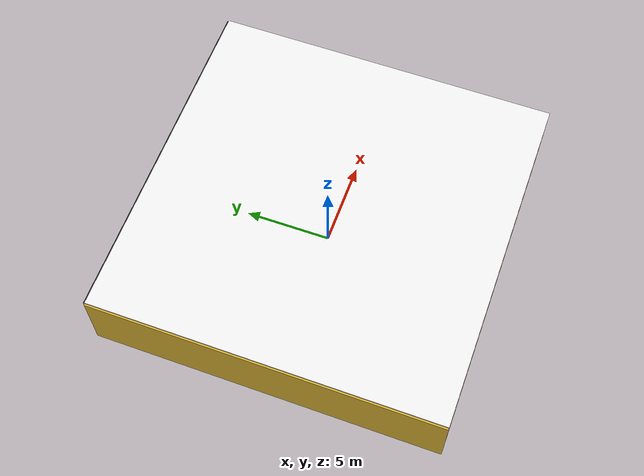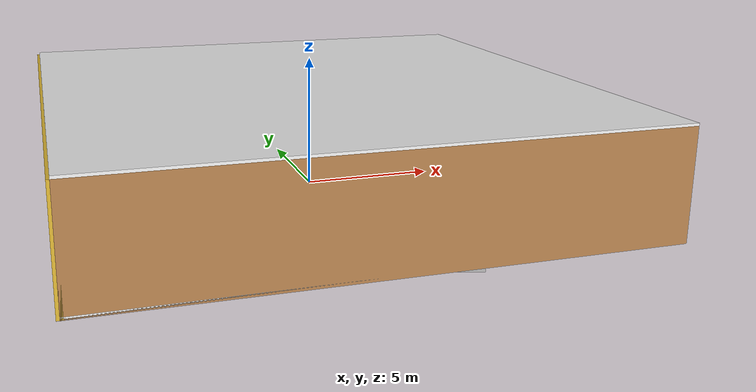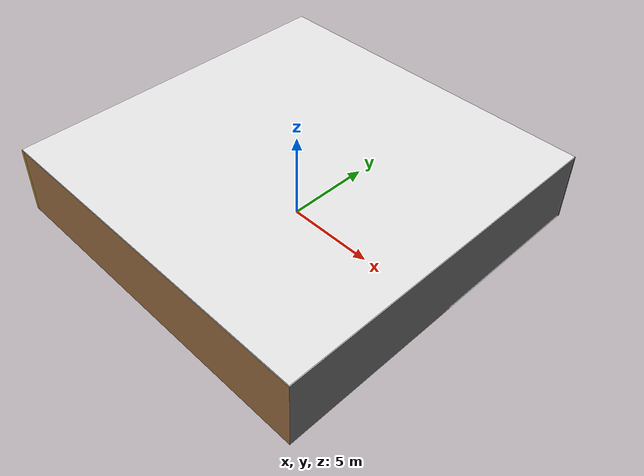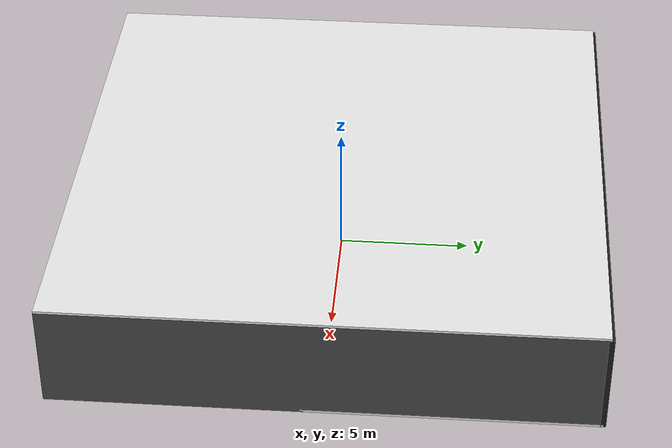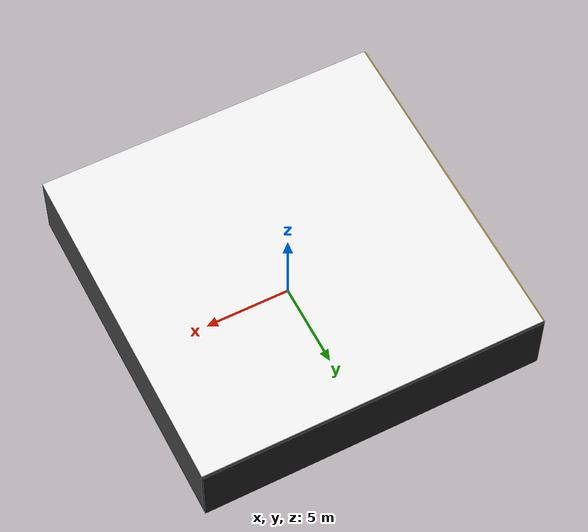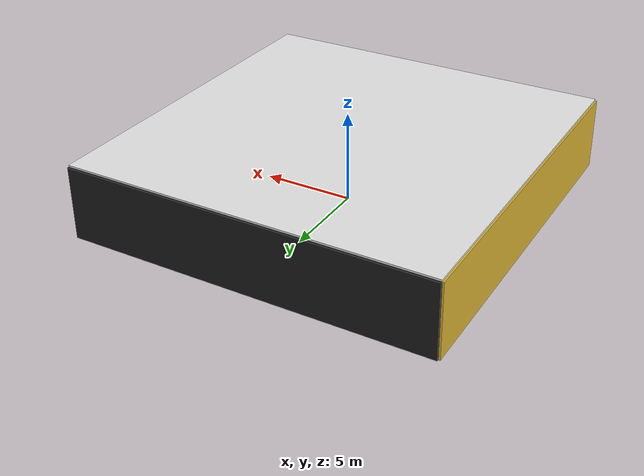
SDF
<sdf version="1.4">
 <world name="default">
  <physics type="ode">
   <max_step_size>0.001</max_step_size>
   <real_time_factor>1</real_time_factor>
   <real_time_update_rate>1000</real_time_update_rate>
   <gravity>0 0 -9.8</gravity>
  </physics>
  <scene><ambient>0.4 0.4 0.4 1</ambient><background>0.7 0.7 0.7 1</background><shadows>1</shadows></scene>
  <model name="Surrounding">
   <static>1</static>
   <link name="Ceiling">
    <collision name="Ceiling_Collision"><geometry><box><size>20 20 0.1</size></box></geometry></collision>
    <visual name="Ceiling_Visual">
     <geometry><box><size>20 20 0.1</size></box></geometry>
     <material>
      <script><uri>file://media/materials/scripts/gazebo.material</uri><name>Gazebo/White</name></script>
     </material>
    </visual>
    <pose>0 0 4.05 0 0 0</pose>
   </link>
   <link name="Wall_South">
    <collision name="Wall_South_Collision">
     <geometry><box><size>20 0 4</size></box></geometry>
     <pose>0 0 2 0 -0 0</pose>
    </collision>
    <visual name="Wall_South_Visual">
     <pose>0 0 2 0 -0 0</pose>
     <geometry><box><size>20 0 4</size></box></geometry>
     <material>
      <script><uri>file://media/materials/scripts/gazebo.material</uri><name>Gazebo/Wood</name></script>
     </material>
    </visual>
    <velocity_decay><linear>0</linear><angular>0</angular></velocity_decay>
    <pose>0 -10 0 0 -0 0</pose>
   </link>
   <link name="Wall_East">
    <collision name="Wall_21_Collision">
     <geometry><box><size>20 0 4</size></box></geometry>
     <pose>0 0 2 0 -0 0</pose>
    </collision>
    <visual name="Wall_21_Visual">
     <pose>0 0 2 0 -0 0</pose>
     <geometry><box><size>20 0 4</size></box></geometry>
     <material>
      <script><uri>file://media/materials/scripts/gazebo.material</uri><name>Gazebo/DarkGrey</name></script>
     </material>
    </visual>
    <velocity_decay><linear>0</linear><angular>0</angular></velocity_decay>
    <pose>10 0 0 0 -0 1.5708</pose>
   </link>
   <link name="Wall_North">
    <collision name="Wall_22_Collision">
     <geometry><box><size>20 0.2 4</size></box></geometry>
     <pose>0 0 2 0 -0 0</pose>
    </collision>
    <visual name="Wall_22_Visual">
     <pose>0 0 2 0 -0 0</pose>
     <geometry><box><size>20 0.2 4</size></box></geometry>
     <material>
      <script><uri>file://media/materials/scripts/gazebo.material</uri><name>Gazebo/Black</name></script>
     </material>
    </visual>
    <velocity_decay><linear>0</linear><angular>0</angular></velocity_decay>
    <pose>0 10 0 0 -0 0</pose>
   </link>
   <link name="Wall_West">
    <collision name="Wall_23_Collision">
     <geometry><box><size>20 0.2 4</size></box></geometry>
     <pose>0 0 2 0 -0 0</pose>
    </collision>
    <visual name="Wall_23_Visual">
     <pose>0 0 2 0 -0 0</pose>
     <geometry><box><size>20 0.2 4</size></box></geometry>
     <material>
      <script><uri>file://media/materials/scripts/gazebo.material</uri><name>Gazebo/Gold</name></script>
     </material>
    </visual>
    <velocity_decay><linear>0</linear><angular>0</angular></velocity_decay>
    <pose>-10 0 0 0 0 -1.5708</pose>
   </link>
   <link name="Ground_link">
    <collision name="collision">
     <pose>0 0 .05 0 -0 0</pose>
     <geometry><box><size>20 20 0.1</size></box></geometry>
    </collision>
    <visual name="visual">
     <pose>0 0 .05 0 -0 0</pose>
     <geometry><box><size>20 20 0.1</size></box></geometry>
     <material>
      <script><uri>file://media/materials/scripts/gazebo.material</uri><name>Gazebo/White</name></script>
     </material>
    </visual>
   </link>
   <static>1</static>
  </model>
  <spherical_coordinates>
   <surface_model>EARTH_WGS84</surface_model>
   <latitude_deg>0</latitude_deg>
   <longitude_deg>0</longitude_deg>
   <elevation>0</elevation>
   <heading_deg>0</heading_deg>
  </spherical_coordinates>
  <light name="lightball_0" type="diffuse">
   <diffuse>0.8 0.8 0.8 1</diffuse>
   <specular>0.2 0.2 0.2 1</specular>
   <attenuation>
    <range>100</range>
    <constant>0.7</constant>
    <linear>0.01</linear>
    <quadratic>0.001</quadratic>
   </attenuation>
   <direction>-0.5 0.1 -0.9</direction>
   <pose>9.47638548757 6.3973029125 2.58966682108 0 0 0</pose>
  </light>
  <light name="lightball_1" type="diffuse">
   <diffuse>0.8 0.8 0.8 1</diffuse>
   <specular>0.2 0.2 0.2 1</specular>
   <attenuation>
    <range>100</range>
    <constant>0.7</constant>
    <linear>0.01</linear>
    <quadratic>0.001</quadratic>
   </attenuation>
   <direction>-0.5 0.1 -0.9</direction>
   <pose>-2.51954100686 9.084446253 2.89596404669 0 0 0</pose>
  </light>
  <light name="lightball_2" type="diffuse">
   <diffuse>0.8 0.8 0.8 1</diffuse>
   <specular>0.2 0.2 0.2 1</specular>
   <attenuation>
    <range>100</range>
    <constant>0.7</constant>
    <linear>0.01</linear>
    <quadratic>0.001</quadratic>
   </attenuation>
   <direction>-0.5 0.1 -0.9</direction>
   <pose>9.05005773938 0.296001128972 2.3832799565 0 0 0</pose>
  </light>
  <light name="lightball_3" type="diffuse">
   <diffuse>0.8 0.8 0.8 1</diffuse>
   <specular>0.2 0.2 0.2 1</specular>
   <attenuation>
    <range>100</range>
    <constant>0.7</constant>
    <linear>0.01</linear>
    <quadratic>0.001</quadratic>
   </attenuation>
   <direction>-0.5 0.1 -0.9</direction>
   <pose>-4.48577978589 8.5050698372 2.31572894941 0 0 0</pose>
  </light>
  <light name="lightball_4" type="diffuse">
   <diffuse>0.8 0.8 0.8 1</diffuse>
   <specular>0.2 0.2 0.2 1</specular>
   <attenuation>
    <range>100</range>
    <constant>0.7</constant>
    <linear>0.01</linear>
    <quadratic>0.001</quadratic>
   </attenuation>
   <direction>-0.5 0.1 -0.9</direction>
   <pose>-6.67660651601 3.36914207385 3.77244606576 0 0 0</pose>
  </light>
  <light name="lightball_5" type="diffuse">
   <diffuse>0.8 0.8 0.8 1</diffuse>
   <specular>0.2 0.2 0.2 1</specular>
   <attenuation>
    <range>100</range>
    <constant>0.7</constant>
    <linear>0.01</linear>
    <quadratic>0.001</quadratic>
   </attenuation>
   <direction>-0.5 0.1 -0.9</direction>
   <pose>-2.2146756045 8.20472367337 0.688491357411 0 0 0</pose>
  </light>
  <light name="lightball_6" type="diffuse">
   <diffuse>0.8 0.8 0.8 1</diffuse>
   <specular>0.2 0.2 0.2 1</specular>
   <attenuation>
    <range>100</range>
    <constant>0.7</constant>
    <linear>0.01</linear>
    <quadratic>0.001</quadratic>
   </attenuation>
   <direction>-0.5 0.1 -0.9</direction>
   <pose>-3.04632352867 -5.25449661514 2.06771015909 0 0 0</pose>
  </light>
  <light name="lightball_7" type="diffuse">
   <diffuse>0.8 0.8 0.8 1</diffuse>
   <specular>0.2 0.2 0.2 1</specular>
   <attenuation>
    <range>100</range>
    <constant>0.7</constant>
    <linear>0.01</linear>
    <quadratic>0.001</quadratic>
   </attenuation>
   <direction>-0.5 0.1 -0.9</direction>
   <pose>3.50710934602 -5.42489077155 2.39023063739 0 0 0</pose>
  </light>
  <light name="lightball_8" type="diffuse">
   <diffuse>0.8 0.8 0.8 1</diffuse>
   <specular>0.2 0.2 0.2 1</specular>
   <attenuation>
    <range>100</range>
    <constant>0.7</constant>
    <linear>0.01</linear>
    <quadratic>0.001</quadratic>
   </attenuation>
   <direction>-0.5 0.1 -0.9</direction>
   <pose>0.742640051966 -2.16365272281 3.17579071463 0 0 0</pose>
  </light>
  <light name="lightball_9" type="diffuse">
   <diffuse>0.8 0.8 0.8 1</diffuse>
   <specular>0.2 0.2 0.2 1</specular>
   <attenuation>
    <range>100</range>
    <constant>0.7</constant>
    <linear>0.01</linear>
    <quadratic>0.001</quadratic>
   </attenuation>
   <direction>-0.5 0.1 -0.9</direction>
   <pose>-2.84466648736 3.82491070292 1.94319354147 0 0 0</pose>
  </light>
  <light name="lightball_10" type="diffuse">
   <diffuse>0.8 0.8 0.8 1</diffuse>
   <specular>0.2 0.2 0.2 1</specular>
   <attenuation>
    <range>100</range>
    <constant>0.7</constant>
    <linear>0.01</linear>
    <quadratic>0.001</quadratic>
   </attenuation>
   <direction>-0.5 0.1 -0.9</direction>
   <pose>-7.84371533065 7.43094199367 2.86089705237 0 0 0</pose>
  </light>
  <light name="lightball_11" type="diffuse">
   <diffuse>0.8 0.8 0.8 1</diffuse>
   <specular>0.2 0.2 0.2 1</specular>
   <attenuation>
    <range>100</range>
    <constant>0.7</constant>
    <linear>0.01</linear>
    <quadratic>0.001</quadratic>
   </attenuation>
   <direction>-0.5 0.1 -0.9</direction>
   <pose>-8.09706823682 -5.12302302394 3.38479703118 0 0 0</pose>
  </light>
  <include><uri>model://cabinet</uri><pose>-6.93394320391 -1.37074364631 0 0 0 3.07862228037</pose></include>
  <include>
   <uri>model://robocup_3Dsim_goal</uri>
   <pose>-2.01905232703 1.79143229318 0 0 0 2.42494902074</pose>
  </include>
  <include>
   <uri>model://textured_shapes</uri>
   <pose>-1.30825426782 8.1369633891 0 0 0 1.47979863422</pose>
  </include>
  <include>
   <uri>model://textured_shapes</uri>
   <pose>1.35858072587 -8.12911426077 0 0 0 1.2618161052</pose>
  </include>
  <include><uri>model://table</uri><pose>2.04653790327 1.58944737676 0 0 0 2.35076481393</pose></include>
  <include><uri>model://table</uri><pose>5.23067689853 4.46929971468 0 0 0 0.344996368622</pose></include>
 </world>
</sdf>

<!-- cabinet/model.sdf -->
<sdf version="1.5">
  <model name="cabinet">
    <static>true</static>
    <link name="cabinet_bottom_plate">
      <inertial>
        <pose>0 0 -1 0 0 0</pose>
        <inertia>
          <ixx>2.050000</ixx>
          <ixy>0</ixy>
          <ixz>0</ixz>
          <iyy>2.050000</iyy>
          <iyz>0</iyz>
          <izz>2.050000</izz>
        </inertia>
        <mass>25.000000</mass>
      </inertial>
      <collision name="cabinet_bottom_plate_geom">
        <pose>0 0 0.010000 0 0 0</pose>
        <geometry>
          <box>
            <size>0.450000 0.450000 0.020000</size>
          </box>
        </geometry>
      </collision>
      <visual name="cabinet_bottom_plate_geom_visual">
        <pose>0 0 0.010000 0 0 0</pose>
        <geometry>
          <box>
            <size>0.450000 0.450000 0.020000</size>
          </box>
        </geometry>
        <material>
          <script>
            <uri>model://media/materials/scripts/gazebo.material</uri>
            <name>Gazebo/Wood</name>
          </script>
        </material>
      </visual>
      <collision name="cabinet_bottom_plate_geom_cabinet_back_plate">
        <pose>0.235000 0 0.510000 0 0 0</pose>
        <geometry>
          <box>
            <size>0.020000 0.450000 1.020000</size>
          </box>
        </geometry>
      </collision>
      <visual name="cabinet_bottom_plate_geom_cabinet_back_plate_visual">
        <pose>0.235000 0 0.510000 0 0 0</pose>
        <geometry>
          <box>
            <size>0.020000 0.450000 1.020000</size>
          </box>
        </geometry>
        <material>
          <script>
            <uri>model://media/materials/scripts/gazebo.material</uri>
            <name>Gazebo/Wood</name>
          </script>
        </material>
      </visual>
      <collision name="cabinet_bottom_plate_geom_cabinet_left_plate">
        <pose>0 0.235000 0.510000 0 0 0</pose>
        <geometry>
          <box>
            <size>0.450000 0.020000 1.020000</size>
          </box>
        </geometry>
      </collision>
      <visual name="cabinet_bottom_plate_geom_cabinet_left_plate_visual">
        <pose>0 0.235000 0.510000 0 0 0</pose>
        <geometry>
          <box>
            <size>0.450000 0.020000 1.020000</size>
          </box>
        </geometry>
        <material>
          <script>
            <uri>model://media/materials/scripts/gazebo.material</uri>
            <name>Gazebo/Wood</name>
          </script>
        </material>
      </visual>
      <collision name="cabinet_bottom_plate_geom_cabinet_middle_plate">
        <pose>0 0 0.510000 0 0 0</pose>
        <geometry>
          <box>
            <size>0.450000 0.450000 0.020000</size>
          </box>
        </geometry>
      </collision>
      <visual name="cabinet_bottom_plate_geom_cabinet_middle_plate_visual">
        <pose>0 0 0.510000 0 0 0</pose>
        <geometry>
          <box>
            <size>0.450000 0.450000 0.020000</size>
          </box>
        </geometry>
        <material>
          <script>
            <uri>model://media/materials/scripts/gazebo.material</uri>
            <name>Gazebo/Wood</name>
          </script>
        </material>
      </visual>
      <collision name="cabinet_bottom_plate_geom_cabinet_right_plate">
        <pose>0 -0.235000 0.510000 0 0 0</pose>
        <geometry>
          <box>
            <size>0.450000 0.020000 1.020000</size>
          </box>
        </geometry>
      </collision>
      <visual name="cabinet_bottom_plate_geom_cabinet_right_plate_visual">
        <pose>0 -0.235000 0.510000 0 0 0</pose>
        <geometry>
          <box>
            <size>0.450000 0.020000 1.020000</size>
          </box>
        </geometry>
        <material>
          <script>
            <uri>model://media/materials/scripts/gazebo.material</uri>
            <name>Gazebo/Wood</name>
          </script>
        </material>
      </visual>
      <collision name="cabinet_bottom_plate_geom_cabinet_top_plate">
        <pose>0 0 1.010000 0 0 0</pose>
        <geometry>
          <box>
            <size>0.450000 0.450000 0.020000</size>
          </box>
        </geometry>
      </collision>
      <visual name="cabinet_bottom_plate_geom_cabinet_top_plate_visual">
        <pose>0 0 1.010000 0 0 0</pose>
        <geometry>
          <box>
            <size>0.450000 0.450000 0.020000</size>
          </box>
        </geometry>
        <material>
          <script>
            <uri>model://media/materials/scripts/gazebo.material</uri>
            <name>Gazebo/Wood</name>
          </script>
        </material>
      </visual>
    </link>
  </model>
</sdf>

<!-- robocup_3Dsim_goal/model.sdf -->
<sdf version="1.5">
  <model name="robocup_3d_goal">
    <static>true</static>
    <link name="left_post">
      <pose>0 1.05 0.45 0 0 0</pose>
      <collision name="collision">
        <geometry>
          <cylinder>
            <radius>0.05</radius>
            <length>0.9</length>
          </cylinder>
        </geometry>
      </collision>
      <visual name="visual">
        <geometry>
          <cylinder>
            <radius>0.05</radius>
            <length>0.9</length>
          </cylinder>
        </geometry>
        <material>
          <script>
            <uri>file://media/materials/scripts/gazebo.material</uri>
            <name>Gazebo/ZincYellow</name>
          </script>
        </material>
      </visual>
    </link>
    <link name="left_support_horiz_lower">
      <pose>0.30 1.05 0.01 0 0 0</pose>
      <collision name="collision">
        <geometry>
          <box>
            <size>0.50 0.02 0.02</size>
          </box>
        </geometry>
      </collision>
      <visual name="visual">
        <geometry>
          <box>
            <size>0.50 0.02 0.02</size>
          </box>
        </geometry>
        <material>
          <script>
            <uri>file://media/materials/scripts/gazebo.material</uri>
            <name>Gazebo/White</name>
          </script>
        </material>
      </visual>
    </link>
    <link name="left_support_horiz_upper">
      <pose>0.30 1.05 0.79 0 0 0</pose>
      <collision name="collision">
        <geometry>
          <box>
            <size>0.50 0.02 0.02</size>
          </box>
        </geometry>
      </collision>
      <visual name="visual">
        <geometry>
          <box>
            <size>0.50 0.02 0.02</size>
          </box>
        </geometry>
        <material>
          <script>
            <uri>file://media/materials/scripts/gazebo.material</uri>
            <name>Gazebo/White</name>
          </script>
        </material>
      </visual>
    </link>
    <link name="left_support_vertical">
      <pose>0.56 1.05 0.4 0 1.5708 0</pose>
      <collision name="collision">
        <geometry>
          <box>
            <size>0.80 0.02 0.02</size>
          </box>
        </geometry>
      </collision>
      <visual name="visual">
        <geometry>
          <box>
            <size>0.80 0.02 0.02</size>
          </box>
        </geometry>
        <material>
          <script>
            <uri>file://media/materials/scripts/gazebo.material</uri>
            <name>Gazebo/White</name>
          </script>
        </material>
      </visual>
    </link>
    <link name="right_support_horiz_lower">
      <pose>0.30 -1.05 0.01 0 0 0</pose>
      <collision name="collision">
        <geometry>
          <box>
            <size>0.50 0.02 0.02</size>
          </box>
        </geometry>
      </collision>
      <visual name="visual">
        <geometry>
          <box>
            <size>0.50 0.02 0.02</size>
          </box>
        </geometry>
        <material>
          <script>
            <uri>file://media/materials/scripts/gazebo.material</uri>
            <name>Gazebo/White</name>
          </script>
        </material>
      </visual>
    </link>
    <link name="right_support_horiz_upper">
      <pose>0.30 -1.05 0.79 0 0 0</pose>
      <collision name="collision">
        <geometry>
          <box>
            <size>0.50 0.02 0.02</size>
          </box>
        </geometry>
      </collision>
      <visual name="visual">
        <geometry>
          <box>
            <size>0.50 0.02 0.02</size>
          </box>
        </geometry>
        <material>
          <script>
            <uri>file://media/materials/scripts/gazebo.material</uri>
            <name>Gazebo/White</name>
          </script>
        </material>
      </visual>
    </link>
    <link name="right_support_vertical">
      <pose>0.56 -1.05 0.4 0 1.5708 0</pose>
      <collision name="collision">
        <geometry>
          <box>
            <size>0.80 0.02 0.02</size>
          </box>
        </geometry>
      </collision>
      <visual name="visual">
        <geometry>
          <box>
            <size>0.80 0.02 0.02</size>
          </box>
        </geometry>
        <material>
          <script>
            <uri>file://media/materials/scripts/gazebo.material</uri>
            <name>Gazebo/White</name>
          </script>
        </material>
      </visual>
    </link>
    <link name="center_support_horiz_lower">
      <pose>0.56 0 0.01 0 1.5708 0</pose>
      <collision name="collision">
        <geometry>
          <box>
            <size>0.02 2.08 0.02</size>
          </box>
        </geometry>
      </collision>
      <visual name="visual">
        <geometry>
          <box>
            <size>0.02 2.08 0.02</size>
          </box>
        </geometry>
        <material>
          <script>
            <uri>file://media/materials/scripts/gazebo.material</uri>
            <name>Gazebo/White</name>
          </script>
        </material>
      </visual>
    </link>
    <link name="center_support_horiz_upper">
      <pose>0.56 0 0.79 0 1.5708 0</pose>
      <collision name="collision">
        <geometry>
          <box>
            <size>0.02 2.08 0.02</size>
          </box>
        </geometry>
      </collision>
      <visual name="visual">
        <geometry>
          <box>
            <size>0.02 2.08 0.02</size>
          </box>
        </geometry>
        <material>
          <script>
            <uri>file://media/materials/scripts/gazebo.material</uri>
            <name>Gazebo/White</name>
          </script>
        </material>
      </visual>
    </link>
    <link name="right_post">
      <pose>0 -1.05 0.45 0 0 0</pose>
      <collision name="collision">
        <geometry>
          <cylinder>
            <radius>0.05</radius>
            <length>0.9</length>
          </cylinder>
        </geometry>
      </collision>
      <visual name="visual">
        <geometry>
          <cylinder>
            <radius>0.05</radius>
            <length>0.9</length>
          </cylinder>
        </geometry>
        <material>
          <script>
            <uri>file://media/materials/scripts/gazebo.material</uri>
            <name>Gazebo/ZincYellow</name>
          </script>
        </material>
      </visual>
    </link>
    <link name="crossbar">
      <pose>0 0 0.85 1.57 1.57 0</pose>
      <collision name="collision">
        <geometry>
          <cylinder>
            <radius>0.05</radius>
            <length>2.0</length>
          </cylinder>
        </geometry>
      </collision>
      <visual name="visual">
        <geometry>
          <cylinder>
            <radius>0.05</radius>
            <length>2.0</length>
          </cylinder>
        </geometry>
        <material>
          <script>
            <uri>file://media/materials/scripts/gazebo.material</uri>
            <name>Gazebo/ZincYellow</name>
          </script>
        </material>
      </visual>
    </link>
    <link name="center_net">
      <pose>0.56 0 0.40 0 0 0</pose>
      <collision name="collision">
        <geometry>
          <box>
            <size>0.01 2.1 0.80</size>
          </box>
        </geometry>
      </collision>
      <visual name="visual">
        <geometry>
          <box>
            <size>0.01 2.1 0.80</size>
          </box>
        </geometry>
        <material>
          <script>
            <uri>model://../model_source/models/robocup09_spl_field/materials/scripts/</uri>
            <uri>model://../model_source/models/robocup09_spl_field/materials/textures/</uri>
            <name>RoboCup/Net</name>
          </script>
        </material>
      </visual>
    </link>
    <link name="left_net">
      <pose>0.30 1.05 0.40 0 0 0</pose>
      <collision name="collision">
        <geometry>
          <box>
            <size>0.50 0.01 0.76</size>
          </box>
        </geometry>
      </collision>
      <visual name="visual">
        <geometry>
          <box>
            <size>0.50 0.01 0.76</size>
          </box>
        </geometry>
        <material>
          <script>
            <uri>model://../model_source/models/robocup09_spl_field/materials/scripts/</uri>
            <uri>model://../model_source/models/robocup09_spl_field/materials/textures/</uri>
            <name>RoboCup/Net</name>
          </script>
        </material>
      </visual>
    </link>
    <link name="right_net">
      <pose>0.30 -1.05 0.40 0 0 0</pose>
      <collision name="collision">
        <geometry>
          <box>
            <size>0.50 0.01 0.76</size>
          </box>
        </geometry>
      </collision>
      <visual name="visual">
        <geometry>
          <box>
            <size>0.50 0.01 0.76</size>
          </box>
        </geometry>
        <material>
          <script>
            <uri>model://../model_source/models/robocup09_spl_field/materials/scripts/</uri>
            <uri>model://../model_source/models/robocup09_spl_field/materials/textures/</uri>
            <name>RoboCup/Net</name>
          </script>
        </material>
      </visual>
    </link>
  </model>
</sdf>

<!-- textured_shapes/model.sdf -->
<sdf version="1.6">
  <model name="textured_shapes">
    <pose>0 0 0.5 0 0 0</pose>
    <link name="box">
      <pose>0 -1.5 0 0 0 0</pose>
      <collision name="collision">
        <geometry>
          <box>
            <size>1 1 1</size>
          </box>
        </geometry>
      </collision>
      <visual name="visual">
        <geometry>
          <box>
            <size>1 1 1</size>
          </box>
        </geometry>
        <material>
          <script>
            <uri>model://../model_source/models/textured_shapes/materials/scripts</uri>
            <uri>model://../model_source/models/textured_shapes/materials/textures</uri>
            <name>TexturedShape/Squares</name>
          </script>
        </material>
      </visual>
    </link>
    <link name="sphere">
      <collision name="collision">
        <geometry>
          <sphere>
            <radius>0.5</radius>
          </sphere>
        </geometry>
      </collision>
      <visual name="visual">
        <geometry>
          <sphere>
            <radius>0.5</radius>
          </sphere>
        </geometry>
        <material>
          <script>
            <uri>model://../model_source/models/textured_shapes/materials/scripts</uri>
            <uri>model://../model_source/models/textured_shapes/materials/textures</uri>
            <name>TexturedShape/Squares</name>
          </script>
        </material>
      </visual>
    </link>
    <link name="cylinder">
      <pose>0 1.5 0 0 0 0</pose>
      <collision name="collision">
        <geometry>
          <cylinder>
            <radius>0.5</radius>
            <length>1</length>
          </cylinder>
        </geometry>
      </collision>
      <visual name="visual">
        <geometry>
          <cylinder>
            <radius>0.5</radius>
            <length>1</length>
          </cylinder>
        </geometry>
        <material>
          <script>
            <uri>model://../model_source/models/textured_shapes/materials/scripts</uri>
            <uri>model://../model_source/models/textured_shapes/materials/textures</uri>
            <name>TexturedShape/Squares</name>
          </script>
        </material>
      </visual>
    </link>
  </model>
</sdf>

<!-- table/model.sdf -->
<sdf version="1.5">
  <model name="table">
    <static>true</static>
    <link name="link">
      <collision name="surface">
        <pose>0 0 1.0 0 0 0</pose>
        <geometry>
          <box>
            <size>1.5 0.8 0.03</size>
          </box>
        </geometry>
        <surface>
          <friction>
            <ode>
              <mu>0.6</mu>
              <mu2>0.6</mu2>
            </ode>
          </friction>
        </surface>
      </collision>
      <visual name="visual1">
        <pose>0 0 1.0 0 0 0</pose>
        <geometry>
          <box>
            <size>1.5 0.8 0.03</size>
          </box>
        </geometry>
        <material>
          <script>
            <uri>model://media/materials/scripts/gazebo.material</uri>
            <name>Gazebo/Wood</name>
          </script>
        </material>
      </visual>
      <collision name="front_left_leg">
        <pose>0.68 0.38 0.5 0 0 0</pose>
        <geometry>
          <cylinder>
            <radius>0.02</radius>
            <length>1.0</length>
          </cylinder>
        </geometry>
      </collision>
      <visual name="front_left_leg">
        <pose>0.68 0.38 0.5 0 0 0</pose>
        <geometry>
          <cylinder>
            <radius>0.02</radius>
            <length>1.0</length>
          </cylinder>
        </geometry>
        <material>
          <script>
            <uri>model://media/materials/scripts/gazebo.material</uri>
            <name>Gazebo/Grey</name>
          </script>
        </material>
      </visual>
      <collision name="front_right_leg">
        <pose>0.68 -0.38 0.5 0 0 0</pose>
        <geometry>
          <cylinder>
            <radius>0.02</radius>
            <length>1.0</length>
          </cylinder>
        </geometry>
      </collision>
      <visual name="front_right_leg">
        <pose>0.68 -0.38 0.5 0 0 0</pose>
        <geometry>
          <cylinder>
            <radius>0.02</radius>
            <length>1.0</length>
          </cylinder>
        </geometry>
        <material>
          <script>
            <uri>model://media/materials/scripts/gazebo.material</uri>
            <name>Gazebo/Grey</name>
          </script>
        </material>
      </visual>
      <collision name="back_right_leg">
        <pose>-0.68 -0.38 0.5 0 0 0</pose>
        <geometry>
          <cylinder>
            <radius>0.02</radius>
            <length>1.0</length>
          </cylinder>
        </geometry>
      </collision>
      <visual name="back_right_leg">
        <pose>-0.68 -0.38 0.5 0 0 0</pose>
        <geometry>
          <cylinder>
            <radius>0.02</radius>
            <length>1.0</length>
          </cylinder>
        </geometry>
        <material>
          <script>
            <uri>model://media/materials/scripts/gazebo.material</uri>
            <name>Gazebo/Grey</name>
          </script>
        </material>
      </visual>
      <collision name="back_left_leg">
        <pose>-0.68 0.38 0.5 0 0 0</pose>
        <geometry>
          <cylinder>
            <radius>0.02</radius>
            <length>1.0</length>
          </cylinder>
        </geometry>
      </collision>
      <visual name="back_left_leg">
        <pose>-0.68 0.38 0.5 0 0 0</pose>
        <geometry>
          <cylinder>
            <radius>0.02</radius>
            <length>1.0</length>
          </cylinder>
        </geometry>
        <material>
          <script>
            <uri>model://media/materials/scripts/gazebo.material</uri>
            <name>Gazebo/Grey</name>
          </script>
        </material>
      </visual>
    </link>
  </model>
</sdf>
